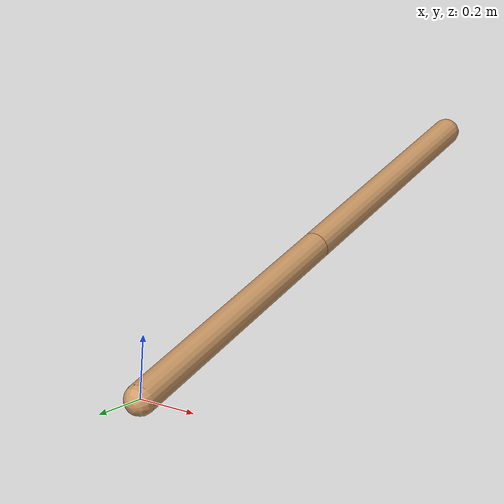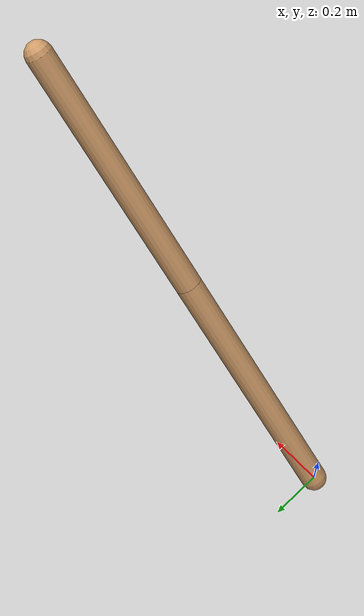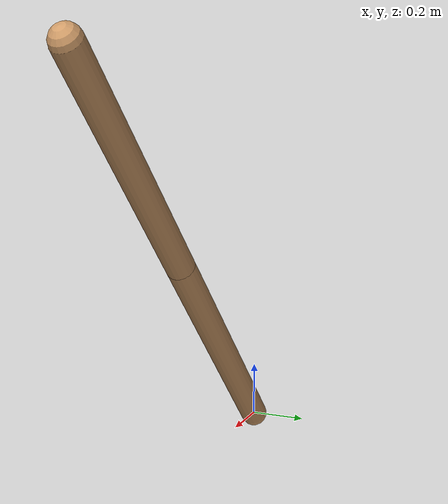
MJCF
<mujoco model="gripper">
  <option gravity="0 0 0"/>
  <asset>
    <texture name="texgeom" type="cube" builtin="flat" mark="cross" width="127" height="1278"
        rgb1="0.8 0.6 0.4" rgb2="0.8 0.6 0.4" markrgb="1 1 1" random="0.01"/>
    <material name='geom' texture="texgeom" texuniform="true"/>
  </asset>
  <default>
    <joint limited='true' damping='1' armature='0' />
    <geom contype='1' conaffinity='1' condim='1' rgba='0.8 0.6 .4 1'
        margin="0.001" solref=".02 1" solimp=".8 .8 .01" material="geom"/>
  </default>
  <worldbody>
    <body name="root" pos="0 0 0">
      <joint name="root_joint" type="hinge" axis="0 1 0" pos="0 0 0" limited="false" />
      <geom name="link1" type="capsule" fromto="0 0 0 0.707 0 0.707" size="0.05" friction="0.9" />
      <body name="child1" pos="0.707 0 0.707">
        <joint name="child1_joint" type="hinge" axis="0 1 0" pos="0 0 0" range="-120 120"/>
        <geom name="link2" type="capsule" fromto="0 0 0 0.707 0 0.707" size="0.05" friction="0.9" />
      </body>
    </body>
  </worldbody>
  <actuator>
    <motor joint="root_joint" ctrlrange="-100.0 100.0" ctrllimited="true"/>
    <motor joint="child1_joint" ctrlrange="-100.0 100.0" ctrllimited="true"/>
  </actuator>

</mujoco>
